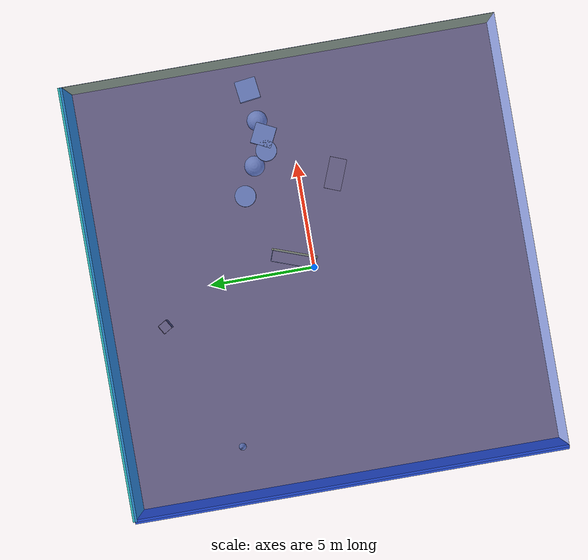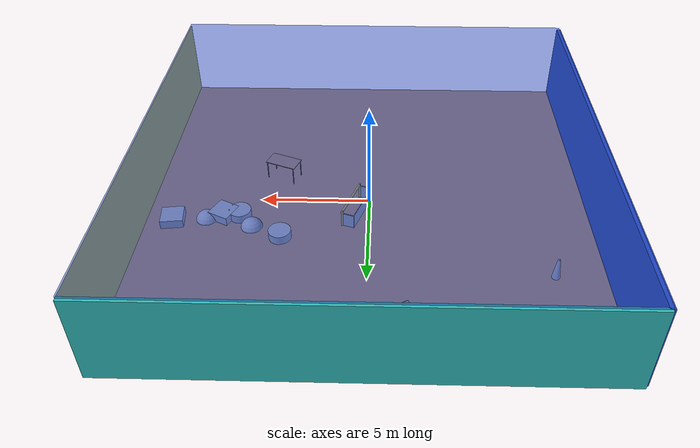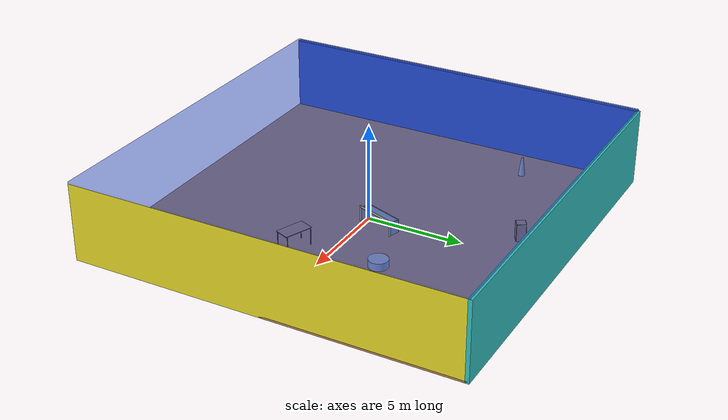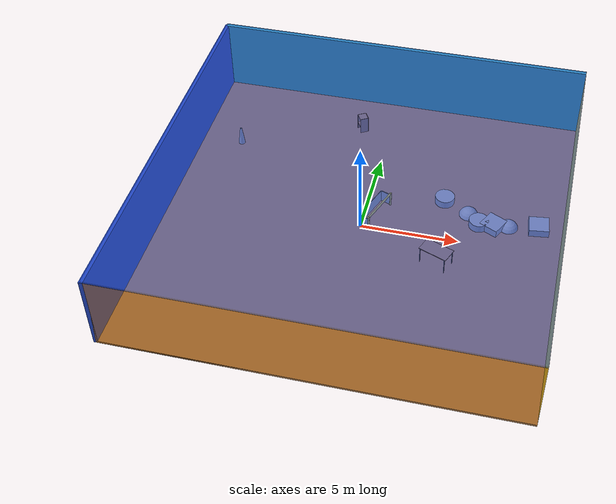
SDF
<sdf version="1.4">
 <world name="default">
  <physics type="ode">
   <max_step_size>0.001</max_step_size>
   <real_time_factor>1</real_time_factor>
   <real_time_update_rate>1000</real_time_update_rate>
   <gravity>0 0 -9.8</gravity>
  </physics>
  <scene><ambient>0.4 0.4 0.4 1</ambient><background>0.7 0.7 0.7 1</background><shadows>1</shadows></scene>
  <model name="Surrounding">
   <static>1</static>
   <link name="Ceiling">
    <collision name="Ceiling_Collision"><geometry><box><size>20 20 0.1</size></box></geometry></collision>
    <visual name="Ceiling_Visual">
     <geometry><box><size>20 20 0.1</size></box></geometry>
     <material>
      <script><uri>file://media/materials/scripts/gazebo.material</uri><name>Gazebo/BlueTransparent</name></script>
     </material>
    </visual>
    <pose>0 0 4.05 0 0 0</pose>
   </link>
   <link name="Wall_South">
    <collision name="Wall_South_Collision">
     <geometry><box><size>20 0 4</size></box></geometry>
     <pose>0 0 2 0 -0 0</pose>
    </collision>
    <visual name="Wall_South_Visual">
     <pose>0 0 2 0 -0 0</pose>
     <geometry><box><size>20 0 4</size></box></geometry>
     <material>
      <script>
       <uri>file://media/materials/scripts/gazebo.material</uri>
       <name>Gazebo/OrangeTransparent</name>
      </script>
     </material>
    </visual>
    <velocity_decay><linear>0</linear><angular>0</angular></velocity_decay>
    <pose>0 -10 0 0 -0 0</pose>
   </link>
   <link name="Wall_East">
    <collision name="Wall_21_Collision">
     <geometry><box><size>20 0 4</size></box></geometry>
     <pose>0 0 2 0 -0 0</pose>
    </collision>
    <visual name="Wall_21_Visual">
     <pose>0 0 2 0 -0 0</pose>
     <geometry><box><size>20 0 4</size></box></geometry>
     <material>
      <script><uri>file://media/materials/scripts/gazebo.material</uri><name>Gazebo/Yellow</name></script>
     </material>
    </visual>
    <velocity_decay><linear>0</linear><angular>0</angular></velocity_decay>
    <pose>10 0 0 0 -0 1.5708</pose>
   </link>
   <link name="Wall_North">
    <collision name="Wall_22_Collision">
     <geometry><box><size>20 0.2 4</size></box></geometry>
     <pose>0 0 2 0 -0 0</pose>
    </collision>
    <visual name="Wall_22_Visual">
     <pose>0 0 2 0 -0 0</pose>
     <geometry><box><size>20 0.2 4</size></box></geometry>
     <material>
      <script>
       <uri>file://media/materials/scripts/gazebo.material</uri>
       <name>Gazebo/TurquoiseGlowOutline</name>
      </script>
     </material>
    </visual>
    <velocity_decay><linear>0</linear><angular>0</angular></velocity_decay>
    <pose>0 10 0 0 -0 0</pose>
   </link>
   <link name="Wall_West">
    <collision name="Wall_23_Collision">
     <geometry><box><size>20 0.2 4</size></box></geometry>
     <pose>0 0 2 0 -0 0</pose>
    </collision>
    <visual name="Wall_23_Visual">
     <pose>0 0 2 0 -0 0</pose>
     <geometry><box><size>20 0.2 4</size></box></geometry>
     <material>
      <script><uri>file://media/materials/scripts/gazebo.material</uri><name>Gazebo/Blue</name></script>
     </material>
    </visual>
    <velocity_decay><linear>0</linear><angular>0</angular></velocity_decay>
    <pose>-10 0 0 0 0 -1.5708</pose>
   </link>
   <link name="Ground_link">
    <collision name="collision">
     <pose>0 0 .05 0 -0 0</pose>
     <geometry><box><size>20 20 0.1</size></box></geometry>
    </collision>
    <visual name="visual">
     <pose>0 0 .05 0 -0 0</pose>
     <geometry><box><size>20 20 0.1</size></box></geometry>
     <material>
      <script><uri>file://media/materials/scripts/gazebo.material</uri><name>Gazebo/Wood</name></script>
     </material>
    </visual>
   </link>
   <static>1</static>
  </model>
  <spherical_coordinates>
   <surface_model>EARTH_WGS84</surface_model>
   <latitude_deg>0</latitude_deg>
   <longitude_deg>0</longitude_deg>
   <elevation>0</elevation>
   <heading_deg>0</heading_deg>
  </spherical_coordinates>
  <light name="lightball_0" type="diffuse">
   <diffuse>0.8 0.8 0.8 1</diffuse>
   <specular>0.2 0.2 0.2 1</specular>
   <attenuation>
    <range>100</range>
    <constant>0.7</constant>
    <linear>0.01</linear>
    <quadratic>0.001</quadratic>
   </attenuation>
   <direction>-0.5 0.1 -0.9</direction>
   <pose>6.60489684358 -4.77116841298 2.94196127507 0 0 0</pose>
  </light>
  <light name="lightball_1" type="diffuse">
   <diffuse>0.8 0.8 0.8 1</diffuse>
   <specular>0.2 0.2 0.2 1</specular>
   <attenuation>
    <range>100</range>
    <constant>0.7</constant>
    <linear>0.01</linear>
    <quadratic>0.001</quadratic>
   </attenuation>
   <direction>-0.5 0.1 -0.9</direction>
   <pose>1.52610137273 -8.06877031175 1.97360792784 0 0 0</pose>
  </light>
  <light name="lightball_2" type="diffuse">
   <diffuse>0.8 0.8 0.8 1</diffuse>
   <specular>0.2 0.2 0.2 1</specular>
   <attenuation>
    <range>100</range>
    <constant>0.7</constant>
    <linear>0.01</linear>
    <quadratic>0.001</quadratic>
   </attenuation>
   <direction>-0.5 0.1 -0.9</direction>
   <pose>-9.7975457401 5.64125866675 1.18888286077 0 0 0</pose>
  </light>
  <light name="lightball_3" type="diffuse">
   <diffuse>0.8 0.8 0.8 1</diffuse>
   <specular>0.2 0.2 0.2 1</specular>
   <attenuation>
    <range>100</range>
    <constant>0.7</constant>
    <linear>0.01</linear>
    <quadratic>0.001</quadratic>
   </attenuation>
   <direction>-0.5 0.1 -0.9</direction>
   <pose>-2.29268112649 6.08398643426 1.94184915507 0 0 0</pose>
  </light>
  <light name="lightball_4" type="diffuse">
   <diffuse>0.8 0.8 0.8 1</diffuse>
   <specular>0.2 0.2 0.2 1</specular>
   <attenuation>
    <range>100</range>
    <constant>0.7</constant>
    <linear>0.01</linear>
    <quadratic>0.001</quadratic>
   </attenuation>
   <direction>-0.5 0.1 -0.9</direction>
   <pose>-7.70125418564 1.73648426572 0.503762520601 0 0 0</pose>
  </light>
  <light name="lightball_5" type="diffuse">
   <diffuse>0.8 0.8 0.8 1</diffuse>
   <specular>0.2 0.2 0.2 1</specular>
   <attenuation>
    <range>100</range>
    <constant>0.7</constant>
    <linear>0.01</linear>
    <quadratic>0.001</quadratic>
   </attenuation>
   <direction>-0.5 0.1 -0.9</direction>
   <pose>-0.311384016936 7.81867813132 1.63581941527 0 0 0</pose>
  </light>
  <light name="lightball_6" type="diffuse">
   <diffuse>0.8 0.8 0.8 1</diffuse>
   <specular>0.2 0.2 0.2 1</specular>
   <attenuation>
    <range>100</range>
    <constant>0.7</constant>
    <linear>0.01</linear>
    <quadratic>0.001</quadratic>
   </attenuation>
   <direction>-0.5 0.1 -0.9</direction>
   <pose>-8.25777227289 6.18368263394 1.44233540643 0 0 0</pose>
  </light>
  <light name="lightball_7" type="diffuse">
   <diffuse>0.8 0.8 0.8 1</diffuse>
   <specular>0.2 0.2 0.2 1</specular>
   <attenuation>
    <range>100</range>
    <constant>0.7</constant>
    <linear>0.01</linear>
    <quadratic>0.001</quadratic>
   </attenuation>
   <direction>-0.5 0.1 -0.9</direction>
   <pose>-3.94317870832 3.68556090245 0.795548438188 0 0 0</pose>
  </light>
  <light name="lightball_8" type="diffuse">
   <diffuse>0.8 0.8 0.8 1</diffuse>
   <specular>0.2 0.2 0.2 1</specular>
   <attenuation>
    <range>100</range>
    <constant>0.7</constant>
    <linear>0.01</linear>
    <quadratic>0.001</quadratic>
   </attenuation>
   <direction>-0.5 0.1 -0.9</direction>
   <pose>-2.54953067492 4.35123522239 1.84814018064 0 0 0</pose>
  </light>
  <light name="lightball_9" type="diffuse">
   <diffuse>0.8 0.8 0.8 1</diffuse>
   <specular>0.2 0.2 0.2 1</specular>
   <attenuation>
    <range>100</range>
    <constant>0.7</constant>
    <linear>0.01</linear>
    <quadratic>0.001</quadratic>
   </attenuation>
   <direction>-0.5 0.1 -0.9</direction>
   <pose>-5.1998286772 -8.87740141118 3.05656618416 0 0 0</pose>
  </light>
  <light name="lightball_10" type="diffuse">
   <diffuse>0.8 0.8 0.8 1</diffuse>
   <specular>0.2 0.2 0.2 1</specular>
   <attenuation>
    <range>100</range>
    <constant>0.7</constant>
    <linear>0.01</linear>
    <quadratic>0.001</quadratic>
   </attenuation>
   <direction>-0.5 0.1 -0.9</direction>
   <pose>8.06128621541 -4.4087002689 1.93115183128 0 0 0</pose>
  </light>
  <light name="lightball_11" type="diffuse">
   <diffuse>0.8 0.8 0.8 1</diffuse>
   <specular>0.2 0.2 0.2 1</specular>
   <attenuation>
    <range>100</range>
    <constant>0.7</constant>
    <linear>0.01</linear>
    <quadratic>0.001</quadratic>
   </attenuation>
   <direction>-0.5 0.1 -0.9</direction>
   <pose>-7.25028869458 6.53978328538 3.39742554686 0 0 0</pose>
  </light>
  <light name="lightball_12" type="diffuse">
   <diffuse>0.8 0.8 0.8 1</diffuse>
   <specular>0.2 0.2 0.2 1</specular>
   <attenuation>
    <range>100</range>
    <constant>0.7</constant>
    <linear>0.01</linear>
    <quadratic>0.001</quadratic>
   </attenuation>
   <direction>-0.5 0.1 -0.9</direction>
   <pose>-7.70677918779 2.24607752607 2.17570756332 0 0 0</pose>
  </light>
  <light name="lightball_13" type="diffuse">
   <diffuse>0.8 0.8 0.8 1</diffuse>
   <specular>0.2 0.2 0.2 1</specular>
   <attenuation>
    <range>100</range>
    <constant>0.7</constant>
    <linear>0.01</linear>
    <quadratic>0.001</quadratic>
   </attenuation>
   <direction>-0.5 0.1 -0.9</direction>
   <pose>0.245057353836 -4.50671145408 3.1706163861 0 0 0</pose>
  </light>
  <include>
   <uri>model://construction_cone</uri>
   <pose>-7.76978924724 4.79525940526 0 0 0 1.2610369635</pose>
  </include>
  <include><uri>model://cabinet</uri><pose>-1.55738538785 7.37059593758 0 0 0 0.537114439371</pose></include>
  <include>
   <uri>model://robocup_3Dsim_goal</uri>
   <pose>0.816724058578 0.797229473051 0 0 0 2.79659283158</pose>
  </include>
  <include><uri>model://table</uri><pose>4.15419062846 -1.71515765585 0 0 0 2.76892270223</pose></include>
  <include>
   <uri>model://textured_shapes</uri>
   <pose>5.20446198749 1.96760410272 0 0 0 1.11100211245</pose>
  </include>
  <include>
   <uri>model://textured_shapes</uri>
   <pose>7.29891617406 1.49021473701 0 0 0 1.69767030669</pose>
  </include>
 </world>
</sdf>

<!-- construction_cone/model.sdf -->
<sdf version="1.5">
  <model name="Construction Cone">
    <link name="link">
      <collision name="collision">
        <geometry>
          <mesh>
            <scale>10 10 10</scale>
            <uri>file://isr-testbed/construction_cone/meshes/construction_cone.dae</uri>
          </mesh>
        </geometry>
      </collision>
      <visual name="visual">
        <geometry>
          <mesh>
            <scale>10 10 10</scale>
            <uri>file://isr-testbed/construction_cone/meshes/construction_cone.dae</uri>
          </mesh>
        </geometry>
      </visual>
    </link>
  </model>
</sdf>

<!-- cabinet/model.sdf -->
<sdf version="1.5">
  <model name="cabinet">
    <static>true</static>
    <link name="cabinet_bottom_plate">
      <inertial>
        <pose>0 0 -1 0 0 0</pose>
        <inertia>
          <ixx>2.050000</ixx>
          <ixy>0</ixy>
          <ixz>0</ixz>
          <iyy>2.050000</iyy>
          <iyz>0</iyz>
          <izz>2.050000</izz>
        </inertia>
        <mass>25.000000</mass>
      </inertial>
      <collision name="cabinet_bottom_plate_geom">
        <pose>0 0 0.010000 0 0 0</pose>
        <geometry>
          <box>
            <size>0.450000 0.450000 0.020000</size>
          </box>
        </geometry>
      </collision>
      <visual name="cabinet_bottom_plate_geom_visual">
        <pose>0 0 0.010000 0 0 0</pose>
        <geometry>
          <box>
            <size>0.450000 0.450000 0.020000</size>
          </box>
        </geometry>
        <material>
          <script>
            <uri>model://media/materials/scripts/gazebo.material</uri>
            <name>Gazebo/Wood</name>
          </script>
        </material>
      </visual>
      <collision name="cabinet_bottom_plate_geom_cabinet_back_plate">
        <pose>0.235000 0 0.510000 0 0 0</pose>
        <geometry>
          <box>
            <size>0.020000 0.450000 1.020000</size>
          </box>
        </geometry>
      </collision>
      <visual name="cabinet_bottom_plate_geom_cabinet_back_plate_visual">
        <pose>0.235000 0 0.510000 0 0 0</pose>
        <geometry>
          <box>
            <size>0.020000 0.450000 1.020000</size>
          </box>
        </geometry>
        <material>
          <script>
            <uri>model://media/materials/scripts/gazebo.material</uri>
            <name>Gazebo/Wood</name>
          </script>
        </material>
      </visual>
      <collision name="cabinet_bottom_plate_geom_cabinet_left_plate">
        <pose>0 0.235000 0.510000 0 0 0</pose>
        <geometry>
          <box>
            <size>0.450000 0.020000 1.020000</size>
          </box>
        </geometry>
      </collision>
      <visual name="cabinet_bottom_plate_geom_cabinet_left_plate_visual">
        <pose>0 0.235000 0.510000 0 0 0</pose>
        <geometry>
          <box>
            <size>0.450000 0.020000 1.020000</size>
          </box>
        </geometry>
        <material>
          <script>
            <uri>model://media/materials/scripts/gazebo.material</uri>
            <name>Gazebo/Wood</name>
          </script>
        </material>
      </visual>
      <collision name="cabinet_bottom_plate_geom_cabinet_middle_plate">
        <pose>0 0 0.510000 0 0 0</pose>
        <geometry>
          <box>
            <size>0.450000 0.450000 0.020000</size>
          </box>
        </geometry>
      </collision>
      <visual name="cabinet_bottom_plate_geom_cabinet_middle_plate_visual">
        <pose>0 0 0.510000 0 0 0</pose>
        <geometry>
          <box>
            <size>0.450000 0.450000 0.020000</size>
          </box>
        </geometry>
        <material>
          <script>
            <uri>model://media/materials/scripts/gazebo.material</uri>
            <name>Gazebo/Wood</name>
          </script>
        </material>
      </visual>
      <collision name="cabinet_bottom_plate_geom_cabinet_right_plate">
        <pose>0 -0.235000 0.510000 0 0 0</pose>
        <geometry>
          <box>
            <size>0.450000 0.020000 1.020000</size>
          </box>
        </geometry>
      </collision>
      <visual name="cabinet_bottom_plate_geom_cabinet_right_plate_visual">
        <pose>0 -0.235000 0.510000 0 0 0</pose>
        <geometry>
          <box>
            <size>0.450000 0.020000 1.020000</size>
          </box>
        </geometry>
        <material>
          <script>
            <uri>model://media/materials/scripts/gazebo.material</uri>
            <name>Gazebo/Wood</name>
          </script>
        </material>
      </visual>
      <collision name="cabinet_bottom_plate_geom_cabinet_top_plate">
        <pose>0 0 1.010000 0 0 0</pose>
        <geometry>
          <box>
            <size>0.450000 0.450000 0.020000</size>
          </box>
        </geometry>
      </collision>
      <visual name="cabinet_bottom_plate_geom_cabinet_top_plate_visual">
        <pose>0 0 1.010000 0 0 0</pose>
        <geometry>
          <box>
            <size>0.450000 0.450000 0.020000</size>
          </box>
        </geometry>
        <material>
          <script>
            <uri>model://media/materials/scripts/gazebo.material</uri>
            <name>Gazebo/Wood</name>
          </script>
        </material>
      </visual>
    </link>
  </model>
</sdf>

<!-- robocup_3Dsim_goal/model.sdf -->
<sdf version="1.5">
  <model name="robocup_3d_goal">
    <static>true</static>
    <link name="left_post">
      <pose>0 1.05 0.45 0 0 0</pose>
      <collision name="collision">
        <geometry>
          <cylinder>
            <radius>0.05</radius>
            <length>0.9</length>
          </cylinder>
        </geometry>
      </collision>
      <visual name="visual">
        <geometry>
          <cylinder>
            <radius>0.05</radius>
            <length>0.9</length>
          </cylinder>
        </geometry>
        <material>
          <script>
            <uri>file://media/materials/scripts/gazebo.material</uri>
            <name>Gazebo/ZincYellow</name>
          </script>
        </material>
      </visual>
    </link>
    <link name="left_support_horiz_lower">
      <pose>0.30 1.05 0.01 0 0 0</pose>
      <collision name="collision">
        <geometry>
          <box>
            <size>0.50 0.02 0.02</size>
          </box>
        </geometry>
      </collision>
      <visual name="visual">
        <geometry>
          <box>
            <size>0.50 0.02 0.02</size>
          </box>
        </geometry>
        <material>
          <script>
            <uri>file://media/materials/scripts/gazebo.material</uri>
            <name>Gazebo/White</name>
          </script>
        </material>
      </visual>
    </link>
    <link name="left_support_horiz_upper">
      <pose>0.30 1.05 0.79 0 0 0</pose>
      <collision name="collision">
        <geometry>
          <box>
            <size>0.50 0.02 0.02</size>
          </box>
        </geometry>
      </collision>
      <visual name="visual">
        <geometry>
          <box>
            <size>0.50 0.02 0.02</size>
          </box>
        </geometry>
        <material>
          <script>
            <uri>file://media/materials/scripts/gazebo.material</uri>
            <name>Gazebo/White</name>
          </script>
        </material>
      </visual>
    </link>
    <link name="left_support_vertical">
      <pose>0.56 1.05 0.4 0 1.5708 0</pose>
      <collision name="collision">
        <geometry>
          <box>
            <size>0.80 0.02 0.02</size>
          </box>
        </geometry>
      </collision>
      <visual name="visual">
        <geometry>
          <box>
            <size>0.80 0.02 0.02</size>
          </box>
        </geometry>
        <material>
          <script>
            <uri>file://media/materials/scripts/gazebo.material</uri>
            <name>Gazebo/White</name>
          </script>
        </material>
      </visual>
    </link>
    <link name="right_support_horiz_lower">
      <pose>0.30 -1.05 0.01 0 0 0</pose>
      <collision name="collision">
        <geometry>
          <box>
            <size>0.50 0.02 0.02</size>
          </box>
        </geometry>
      </collision>
      <visual name="visual">
        <geometry>
          <box>
            <size>0.50 0.02 0.02</size>
          </box>
        </geometry>
        <material>
          <script>
            <uri>file://media/materials/scripts/gazebo.material</uri>
            <name>Gazebo/White</name>
          </script>
        </material>
      </visual>
    </link>
    <link name="right_support_horiz_upper">
      <pose>0.30 -1.05 0.79 0 0 0</pose>
      <collision name="collision">
        <geometry>
          <box>
            <size>0.50 0.02 0.02</size>
          </box>
        </geometry>
      </collision>
      <visual name="visual">
        <geometry>
          <box>
            <size>0.50 0.02 0.02</size>
          </box>
        </geometry>
        <material>
          <script>
            <uri>file://media/materials/scripts/gazebo.material</uri>
            <name>Gazebo/White</name>
          </script>
        </material>
      </visual>
    </link>
    <link name="right_support_vertical">
      <pose>0.56 -1.05 0.4 0 1.5708 0</pose>
      <collision name="collision">
        <geometry>
          <box>
            <size>0.80 0.02 0.02</size>
          </box>
        </geometry>
      </collision>
      <visual name="visual">
        <geometry>
          <box>
            <size>0.80 0.02 0.02</size>
          </box>
        </geometry>
        <material>
          <script>
            <uri>file://media/materials/scripts/gazebo.material</uri>
            <name>Gazebo/White</name>
          </script>
        </material>
      </visual>
    </link>
    <link name="center_support_horiz_lower">
      <pose>0.56 0 0.01 0 1.5708 0</pose>
      <collision name="collision">
        <geometry>
          <box>
            <size>0.02 2.08 0.02</size>
          </box>
        </geometry>
      </collision>
      <visual name="visual">
        <geometry>
          <box>
            <size>0.02 2.08 0.02</size>
          </box>
        </geometry>
        <material>
          <script>
            <uri>file://media/materials/scripts/gazebo.material</uri>
            <name>Gazebo/White</name>
          </script>
        </material>
      </visual>
    </link>
    <link name="center_support_horiz_upper">
      <pose>0.56 0 0.79 0 1.5708 0</pose>
      <collision name="collision">
        <geometry>
          <box>
            <size>0.02 2.08 0.02</size>
          </box>
        </geometry>
      </collision>
      <visual name="visual">
        <geometry>
          <box>
            <size>0.02 2.08 0.02</size>
          </box>
        </geometry>
        <material>
          <script>
            <uri>file://media/materials/scripts/gazebo.material</uri>
            <name>Gazebo/White</name>
          </script>
        </material>
      </visual>
    </link>
    <link name="right_post">
      <pose>0 -1.05 0.45 0 0 0</pose>
      <collision name="collision">
        <geometry>
          <cylinder>
            <radius>0.05</radius>
            <length>0.9</length>
          </cylinder>
        </geometry>
      </collision>
      <visual name="visual">
        <geometry>
          <cylinder>
            <radius>0.05</radius>
            <length>0.9</length>
          </cylinder>
        </geometry>
        <material>
          <script>
            <uri>file://media/materials/scripts/gazebo.material</uri>
            <name>Gazebo/ZincYellow</name>
          </script>
        </material>
      </visual>
    </link>
    <link name="crossbar">
      <pose>0 0 0.85 1.57 1.57 0</pose>
      <collision name="collision">
        <geometry>
          <cylinder>
            <radius>0.05</radius>
            <length>2.0</length>
          </cylinder>
        </geometry>
      </collision>
      <visual name="visual">
        <geometry>
          <cylinder>
            <radius>0.05</radius>
            <length>2.0</length>
          </cylinder>
        </geometry>
        <material>
          <script>
            <uri>file://media/materials/scripts/gazebo.material</uri>
            <name>Gazebo/ZincYellow</name>
          </script>
        </material>
      </visual>
    </link>
    <link name="center_net">
      <pose>0.56 0 0.40 0 0 0</pose>
      <collision name="collision">
        <geometry>
          <box>
            <size>0.01 2.1 0.80</size>
          </box>
        </geometry>
      </collision>
      <visual name="visual">
        <geometry>
          <box>
            <size>0.01 2.1 0.80</size>
          </box>
        </geometry>
        <material>
          <script>
            <uri>model://../model_source/models/robocup09_spl_field/materials/scripts/</uri>
            <uri>model://../model_source/models/robocup09_spl_field/materials/textures/</uri>
            <name>RoboCup/Net</name>
          </script>
        </material>
      </visual>
    </link>
    <link name="left_net">
      <pose>0.30 1.05 0.40 0 0 0</pose>
      <collision name="collision">
        <geometry>
          <box>
            <size>0.50 0.01 0.76</size>
          </box>
        </geometry>
      </collision>
      <visual name="visual">
        <geometry>
          <box>
            <size>0.50 0.01 0.76</size>
          </box>
        </geometry>
        <material>
          <script>
            <uri>model://../model_source/models/robocup09_spl_field/materials/scripts/</uri>
            <uri>model://../model_source/models/robocup09_spl_field/materials/textures/</uri>
            <name>RoboCup/Net</name>
          </script>
        </material>
      </visual>
    </link>
    <link name="right_net">
      <pose>0.30 -1.05 0.40 0 0 0</pose>
      <collision name="collision">
        <geometry>
          <box>
            <size>0.50 0.01 0.76</size>
          </box>
        </geometry>
      </collision>
      <visual name="visual">
        <geometry>
          <box>
            <size>0.50 0.01 0.76</size>
          </box>
        </geometry>
        <material>
          <script>
            <uri>model://../model_source/models/robocup09_spl_field/materials/scripts/</uri>
            <uri>model://../model_source/models/robocup09_spl_field/materials/textures/</uri>
            <name>RoboCup/Net</name>
          </script>
        </material>
      </visual>
    </link>
  </model>
</sdf>

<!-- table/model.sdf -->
<sdf version="1.5">
  <model name="table">
    <static>true</static>
    <link name="link">
      <collision name="surface">
        <pose>0 0 1.0 0 0 0</pose>
        <geometry>
          <box>
            <size>1.5 0.8 0.03</size>
          </box>
        </geometry>
        <surface>
          <friction>
            <ode>
              <mu>0.6</mu>
              <mu2>0.6</mu2>
            </ode>
          </friction>
        </surface>
      </collision>
      <visual name="visual1">
        <pose>0 0 1.0 0 0 0</pose>
        <geometry>
          <box>
            <size>1.5 0.8 0.03</size>
          </box>
        </geometry>
        <material>
          <script>
            <uri>model://media/materials/scripts/gazebo.material</uri>
            <name>Gazebo/Wood</name>
          </script>
        </material>
      </visual>
      <collision name="front_left_leg">
        <pose>0.68 0.38 0.5 0 0 0</pose>
        <geometry>
          <cylinder>
            <radius>0.02</radius>
            <length>1.0</length>
          </cylinder>
        </geometry>
      </collision>
      <visual name="front_left_leg">
        <pose>0.68 0.38 0.5 0 0 0</pose>
        <geometry>
          <cylinder>
            <radius>0.02</radius>
            <length>1.0</length>
          </cylinder>
        </geometry>
        <material>
          <script>
            <uri>model://media/materials/scripts/gazebo.material</uri>
            <name>Gazebo/Grey</name>
          </script>
        </material>
      </visual>
      <collision name="front_right_leg">
        <pose>0.68 -0.38 0.5 0 0 0</pose>
        <geometry>
          <cylinder>
            <radius>0.02</radius>
            <length>1.0</length>
          </cylinder>
        </geometry>
      </collision>
      <visual name="front_right_leg">
        <pose>0.68 -0.38 0.5 0 0 0</pose>
        <geometry>
          <cylinder>
            <radius>0.02</radius>
            <length>1.0</length>
          </cylinder>
        </geometry>
        <material>
          <script>
            <uri>model://media/materials/scripts/gazebo.material</uri>
            <name>Gazebo/Grey</name>
          </script>
        </material>
      </visual>
      <collision name="back_right_leg">
        <pose>-0.68 -0.38 0.5 0 0 0</pose>
        <geometry>
          <cylinder>
            <radius>0.02</radius>
            <length>1.0</length>
          </cylinder>
        </geometry>
      </collision>
      <visual name="back_right_leg">
        <pose>-0.68 -0.38 0.5 0 0 0</pose>
        <geometry>
          <cylinder>
            <radius>0.02</radius>
            <length>1.0</length>
          </cylinder>
        </geometry>
        <material>
          <script>
            <uri>model://media/materials/scripts/gazebo.material</uri>
            <name>Gazebo/Grey</name>
          </script>
        </material>
      </visual>
      <collision name="back_left_leg">
        <pose>-0.68 0.38 0.5 0 0 0</pose>
        <geometry>
          <cylinder>
            <radius>0.02</radius>
            <length>1.0</length>
          </cylinder>
        </geometry>
      </collision>
      <visual name="back_left_leg">
        <pose>-0.68 0.38 0.5 0 0 0</pose>
        <geometry>
          <cylinder>
            <radius>0.02</radius>
            <length>1.0</length>
          </cylinder>
        </geometry>
        <material>
          <script>
            <uri>model://media/materials/scripts/gazebo.material</uri>
            <name>Gazebo/Grey</name>
          </script>
        </material>
      </visual>
    </link>
  </model>
</sdf>

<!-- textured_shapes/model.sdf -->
<sdf version="1.6">
  <model name="textured_shapes">
    <pose>0 0 0.5 0 0 0</pose>
    <link name="box">
      <pose>0 -1.5 0 0 0 0</pose>
      <collision name="collision">
        <geometry>
          <box>
            <size>1 1 1</size>
          </box>
        </geometry>
      </collision>
      <visual name="visual">
        <geometry>
          <box>
            <size>1 1 1</size>
          </box>
        </geometry>
        <material>
          <script>
            <uri>model://../model_source/models/textured_shapes/materials/scripts</uri>
            <uri>model://../model_source/models/textured_shapes/materials/textures</uri>
            <name>TexturedShape/Squares</name>
          </script>
        </material>
      </visual>
    </link>
    <link name="sphere">
      <collision name="collision">
        <geometry>
          <sphere>
            <radius>0.5</radius>
          </sphere>
        </geometry>
      </collision>
      <visual name="visual">
        <geometry>
          <sphere>
            <radius>0.5</radius>
          </sphere>
        </geometry>
        <material>
          <script>
            <uri>model://../model_source/models/textured_shapes/materials/scripts</uri>
            <uri>model://../model_source/models/textured_shapes/materials/textures</uri>
            <name>TexturedShape/Squares</name>
          </script>
        </material>
      </visual>
    </link>
    <link name="cylinder">
      <pose>0 1.5 0 0 0 0</pose>
      <collision name="collision">
        <geometry>
          <cylinder>
            <radius>0.5</radius>
            <length>1</length>
          </cylinder>
        </geometry>
      </collision>
      <visual name="visual">
        <geometry>
          <cylinder>
            <radius>0.5</radius>
            <length>1</length>
          </cylinder>
        </geometry>
        <material>
          <script>
            <uri>model://../model_source/models/textured_shapes/materials/scripts</uri>
            <uri>model://../model_source/models/textured_shapes/materials/textures</uri>
            <name>TexturedShape/Squares</name>
          </script>
        </material>
      </visual>
    </link>
  </model>
</sdf>
